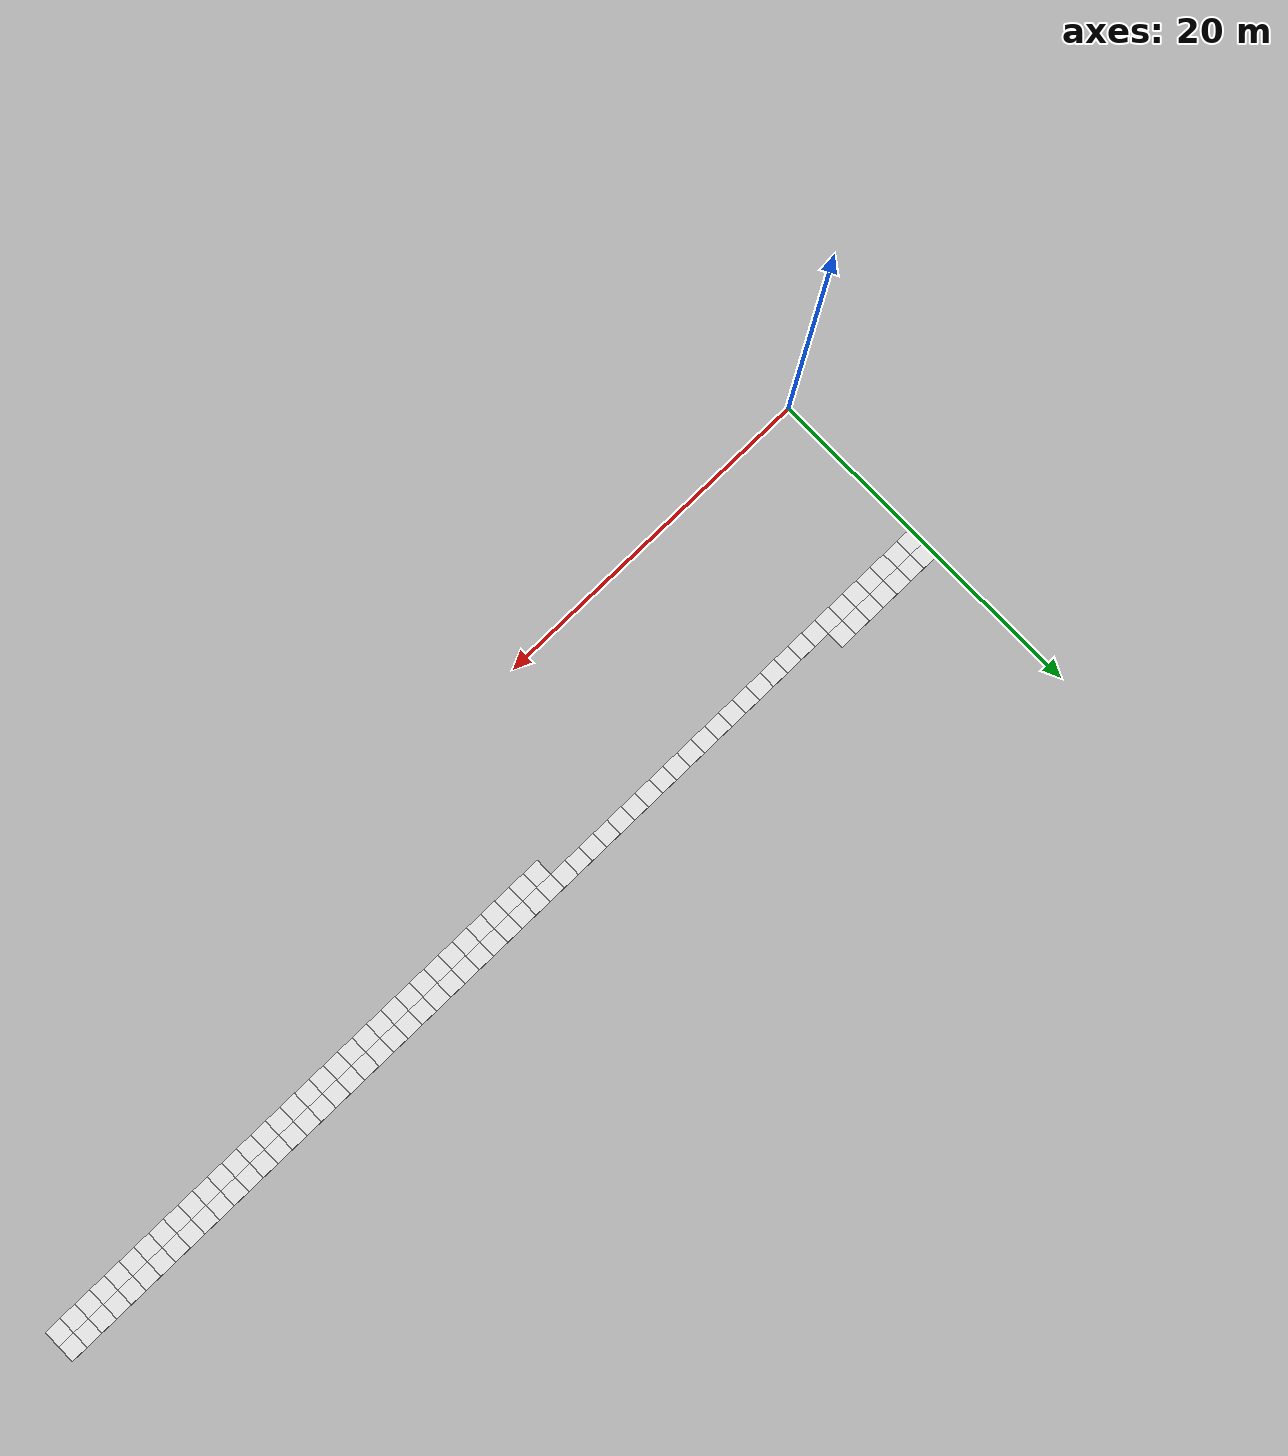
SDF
<sdf version="1.6">
 <world name="grid_world">
  <model name="cell_26_8">
   <static>true</static>
   <link name="link">
    <collision name="collision"><geometry><box><size>1 1 0.1</size></box></geometry></collision>
    <visual name="visual">
     <geometry><box><size>1 1 0.1</size></box></geometry>
     <material>
      <script><uri>file://media/materials/scripts/gazebo.material</uri><name>Gazebo/White</name></script>
     </material>
    </visual>
    <pose>26.5 8.5 0.05 0 0 0</pose>
   </link>
  </model>
  <model name="cell_27_8">
   <static>true</static>
   <link name="link">
    <collision name="collision"><geometry><box><size>1 1 0.1</size></box></geometry></collision>
    <visual name="visual">
     <geometry><box><size>1 1 0.1</size></box></geometry>
     <material>
      <script><uri>file://media/materials/scripts/gazebo.material</uri><name>Gazebo/White</name></script>
     </material>
    </visual>
    <pose>27.5 8.5 0.05 0 0 0</pose>
   </link>
  </model>
  <model name="cell_28_8">
   <static>true</static>
   <link name="link">
    <collision name="collision"><geometry><box><size>1 1 0.1</size></box></geometry></collision>
    <visual name="visual">
     <geometry><box><size>1 1 0.1</size></box></geometry>
     <material>
      <script><uri>file://media/materials/scripts/gazebo.material</uri><name>Gazebo/White</name></script>
     </material>
    </visual>
    <pose>28.5 8.5 0.05 0 0 0</pose>
   </link>
  </model>
  <model name="cell_29_8">
   <static>true</static>
   <link name="link">
    <collision name="collision"><geometry><box><size>1 1 0.1</size></box></geometry></collision>
    <visual name="visual">
     <geometry><box><size>1 1 0.1</size></box></geometry>
     <material>
      <script><uri>file://media/materials/scripts/gazebo.material</uri><name>Gazebo/White</name></script>
     </material>
    </visual>
    <pose>29.5 8.5 0.05 0 0 0</pose>
   </link>
  </model>
  <model name="cell_30_8">
   <static>true</static>
   <link name="link">
    <collision name="collision"><geometry><box><size>1 1 0.1</size></box></geometry></collision>
    <visual name="visual">
     <geometry><box><size>1 1 0.1</size></box></geometry>
     <material>
      <script><uri>file://media/materials/scripts/gazebo.material</uri><name>Gazebo/White</name></script>
     </material>
    </visual>
    <pose>30.5 8.5 0.05 0 0 0</pose>
   </link>
  </model>
  <model name="cell_31_8">
   <static>true</static>
   <link name="link">
    <collision name="collision"><geometry><box><size>1 1 0.1</size></box></geometry></collision>
    <visual name="visual">
     <geometry><box><size>1 1 0.1</size></box></geometry>
     <material>
      <script><uri>file://media/materials/scripts/gazebo.material</uri><name>Gazebo/White</name></script>
     </material>
    </visual>
    <pose>31.5 8.5 0.05 0 0 0</pose>
   </link>
  </model>
  <model name="cell_32_8">
   <static>true</static>
   <link name="link">
    <collision name="collision"><geometry><box><size>1 1 0.1</size></box></geometry></collision>
    <visual name="visual">
     <geometry><box><size>1 1 0.1</size></box></geometry>
     <material>
      <script><uri>file://media/materials/scripts/gazebo.material</uri><name>Gazebo/White</name></script>
     </material>
    </visual>
    <pose>32.5 8.5 0.05 0 0 0</pose>
   </link>
  </model>
  <model name="cell_33_8">
   <static>true</static>
   <link name="link">
    <collision name="collision"><geometry><box><size>1 1 0.1</size></box></geometry></collision>
    <visual name="visual">
     <geometry><box><size>1 1 0.1</size></box></geometry>
     <material>
      <script><uri>file://media/materials/scripts/gazebo.material</uri><name>Gazebo/White</name></script>
     </material>
    </visual>
    <pose>33.5 8.5 0.05 0 0 0</pose>
   </link>
  </model>
  <model name="cell_34_8">
   <static>true</static>
   <link name="link">
    <collision name="collision"><geometry><box><size>1 1 0.1</size></box></geometry></collision>
    <visual name="visual">
     <geometry><box><size>1 1 0.1</size></box></geometry>
     <material>
      <script><uri>file://media/materials/scripts/gazebo.material</uri><name>Gazebo/White</name></script>
     </material>
    </visual>
    <pose>34.5 8.5 0.05 0 0 0</pose>
   </link>
  </model>
  <model name="cell_35_8">
   <static>true</static>
   <link name="link">
    <collision name="collision"><geometry><box><size>1 1 0.1</size></box></geometry></collision>
    <visual name="visual">
     <geometry><box><size>1 1 0.1</size></box></geometry>
     <material>
      <script><uri>file://media/materials/scripts/gazebo.material</uri><name>Gazebo/White</name></script>
     </material>
    </visual>
    <pose>35.5 8.5 0.05 0 0 0</pose>
   </link>
  </model>
  <model name="cell_36_8">
   <static>true</static>
   <link name="link">
    <collision name="collision"><geometry><box><size>1 1 0.1</size></box></geometry></collision>
    <visual name="visual">
     <geometry><box><size>1 1 0.1</size></box></geometry>
     <material>
      <script><uri>file://media/materials/scripts/gazebo.material</uri><name>Gazebo/White</name></script>
     </material>
    </visual>
    <pose>36.5 8.5 0.05 0 0 0</pose>
   </link>
  </model>
  <model name="cell_37_8">
   <static>true</static>
   <link name="link">
    <collision name="collision"><geometry><box><size>1 1 0.1</size></box></geometry></collision>
    <visual name="visual">
     <geometry><box><size>1 1 0.1</size></box></geometry>
     <material>
      <script><uri>file://media/materials/scripts/gazebo.material</uri><name>Gazebo/White</name></script>
     </material>
    </visual>
    <pose>37.5 8.5 0.05 0 0 0</pose>
   </link>
  </model>
  <model name="cell_38_8">
   <static>true</static>
   <link name="link">
    <collision name="collision"><geometry><box><size>1 1 0.1</size></box></geometry></collision>
    <visual name="visual">
     <geometry><box><size>1 1 0.1</size></box></geometry>
     <material>
      <script><uri>file://media/materials/scripts/gazebo.material</uri><name>Gazebo/White</name></script>
     </material>
    </visual>
    <pose>38.5 8.5 0.05 0 0 0</pose>
   </link>
  </model>
  <model name="cell_39_8">
   <static>true</static>
   <link name="link">
    <collision name="collision"><geometry><box><size>1 1 0.1</size></box></geometry></collision>
    <visual name="visual">
     <geometry><box><size>1 1 0.1</size></box></geometry>
     <material>
      <script><uri>file://media/materials/scripts/gazebo.material</uri><name>Gazebo/White</name></script>
     </material>
    </visual>
    <pose>39.5 8.5 0.05 0 0 0</pose>
   </link>
  </model>
  <model name="cell_40_8">
   <static>true</static>
   <link name="link">
    <collision name="collision"><geometry><box><size>1 1 0.1</size></box></geometry></collision>
    <visual name="visual">
     <geometry><box><size>1 1 0.1</size></box></geometry>
     <material>
      <script><uri>file://media/materials/scripts/gazebo.material</uri><name>Gazebo/White</name></script>
     </material>
    </visual>
    <pose>40.5 8.5 0.05 0 0 0</pose>
   </link>
  </model>
  <model name="cell_41_8">
   <static>true</static>
   <link name="link">
    <collision name="collision"><geometry><box><size>1 1 0.1</size></box></geometry></collision>
    <visual name="visual">
     <geometry><box><size>1 1 0.1</size></box></geometry>
     <material>
      <script><uri>file://media/materials/scripts/gazebo.material</uri><name>Gazebo/White</name></script>
     </material>
    </visual>
    <pose>41.5 8.5 0.05 0 0 0</pose>
   </link>
  </model>
  <model name="cell_42_8">
   <static>true</static>
   <link name="link">
    <collision name="collision"><geometry><box><size>1 1 0.1</size></box></geometry></collision>
    <visual name="visual">
     <geometry><box><size>1 1 0.1</size></box></geometry>
     <material>
      <script><uri>file://media/materials/scripts/gazebo.material</uri><name>Gazebo/White</name></script>
     </material>
    </visual>
    <pose>42.5 8.5 0.05 0 0 0</pose>
   </link>
  </model>
  <model name="cell_43_8">
   <static>true</static>
   <link name="link">
    <collision name="collision"><geometry><box><size>1 1 0.1</size></box></geometry></collision>
    <visual name="visual">
     <geometry><box><size>1 1 0.1</size></box></geometry>
     <material>
      <script><uri>file://media/materials/scripts/gazebo.material</uri><name>Gazebo/White</name></script>
     </material>
    </visual>
    <pose>43.5 8.5 0.05 0 0 0</pose>
   </link>
  </model>
  <model name="cell_44_8">
   <static>true</static>
   <link name="link">
    <collision name="collision"><geometry><box><size>1 1 0.1</size></box></geometry></collision>
    <visual name="visual">
     <geometry><box><size>1 1 0.1</size></box></geometry>
     <material>
      <script><uri>file://media/materials/scripts/gazebo.material</uri><name>Gazebo/White</name></script>
     </material>
    </visual>
    <pose>44.5 8.5 0.05 0 0 0</pose>
   </link>
  </model>
  <model name="cell_45_8">
   <static>true</static>
   <link name="link">
    <collision name="collision"><geometry><box><size>1 1 0.1</size></box></geometry></collision>
    <visual name="visual">
     <geometry><box><size>1 1 0.1</size></box></geometry>
     <material>
      <script><uri>file://media/materials/scripts/gazebo.material</uri><name>Gazebo/White</name></script>
     </material>
    </visual>
    <pose>45.5 8.5 0.05 0 0 0</pose>
   </link>
  </model>
  <model name="cell_46_8">
   <static>true</static>
   <link name="link">
    <collision name="collision"><geometry><box><size>1 1 0.1</size></box></geometry></collision>
    <visual name="visual">
     <geometry><box><size>1 1 0.1</size></box></geometry>
     <material>
      <script><uri>file://media/materials/scripts/gazebo.material</uri><name>Gazebo/White</name></script>
     </material>
    </visual>
    <pose>46.5 8.5 0.05 0 0 0</pose>
   </link>
  </model>
  <model name="cell_47_8">
   <static>true</static>
   <link name="link">
    <collision name="collision"><geometry><box><size>1 1 0.1</size></box></geometry></collision>
    <visual name="visual">
     <geometry><box><size>1 1 0.1</size></box></geometry>
     <material>
      <script><uri>file://media/materials/scripts/gazebo.material</uri><name>Gazebo/White</name></script>
     </material>
    </visual>
    <pose>47.5 8.5 0.05 0 0 0</pose>
   </link>
  </model>
  <model name="cell_48_8">
   <static>true</static>
   <link name="link">
    <collision name="collision"><geometry><box><size>1 1 0.1</size></box></geometry></collision>
    <visual name="visual">
     <geometry><box><size>1 1 0.1</size></box></geometry>
     <material>
      <script><uri>file://media/materials/scripts/gazebo.material</uri><name>Gazebo/White</name></script>
     </material>
    </visual>
    <pose>48.5 8.5 0.05 0 0 0</pose>
   </link>
  </model>
  <model name="cell_49_8">
   <static>true</static>
   <link name="link">
    <collision name="collision"><geometry><box><size>1 1 0.1</size></box></geometry></collision>
    <visual name="visual">
     <geometry><box><size>1 1 0.1</size></box></geometry>
     <material>
      <script><uri>file://media/materials/scripts/gazebo.material</uri><name>Gazebo/White</name></script>
     </material>
    </visual>
    <pose>49.5 8.5 0.05 0 0 0</pose>
   </link>
  </model>
  <model name="cell_50_8">
   <static>true</static>
   <link name="link">
    <collision name="collision"><geometry><box><size>1 1 0.1</size></box></geometry></collision>
    <visual name="visual">
     <geometry><box><size>1 1 0.1</size></box></geometry>
     <material>
      <script><uri>file://media/materials/scripts/gazebo.material</uri><name>Gazebo/White</name></script>
     </material>
    </visual>
    <pose>50.5 8.5 0.05 0 0 0</pose>
   </link>
  </model>
  <model name="cell_51_8">
   <static>true</static>
   <link name="link">
    <collision name="collision"><geometry><box><size>1 1 0.1</size></box></geometry></collision>
    <visual name="visual">
     <geometry><box><size>1 1 0.1</size></box></geometry>
     <material>
      <script><uri>file://media/materials/scripts/gazebo.material</uri><name>Gazebo/White</name></script>
     </material>
    </visual>
    <pose>51.5 8.5 0.05 0 0 0</pose>
   </link>
  </model>
  <model name="cell_52_8">
   <static>true</static>
   <link name="link">
    <collision name="collision"><geometry><box><size>1 1 0.1</size></box></geometry></collision>
    <visual name="visual">
     <geometry><box><size>1 1 0.1</size></box></geometry>
     <material>
      <script><uri>file://media/materials/scripts/gazebo.material</uri><name>Gazebo/White</name></script>
     </material>
    </visual>
    <pose>52.5 8.5 0.05 0 0 0</pose>
   </link>
  </model>
  <model name="cell_53_8">
   <static>true</static>
   <link name="link">
    <collision name="collision"><geometry><box><size>1 1 0.1</size></box></geometry></collision>
    <visual name="visual">
     <geometry><box><size>1 1 0.1</size></box></geometry>
     <material>
      <script><uri>file://media/materials/scripts/gazebo.material</uri><name>Gazebo/White</name></script>
     </material>
    </visual>
    <pose>53.5 8.5 0.05 0 0 0</pose>
   </link>
  </model>
  <model name="cell_54_8">
   <static>true</static>
   <link name="link">
    <collision name="collision"><geometry><box><size>1 1 0.1</size></box></geometry></collision>
    <visual name="visual">
     <geometry><box><size>1 1 0.1</size></box></geometry>
     <material>
      <script><uri>file://media/materials/scripts/gazebo.material</uri><name>Gazebo/White</name></script>
     </material>
    </visual>
    <pose>54.5 8.5 0.05 0 0 0</pose>
   </link>
  </model>
  <model name="cell_55_8">
   <static>true</static>
   <link name="link">
    <collision name="collision"><geometry><box><size>1 1 0.1</size></box></geometry></collision>
    <visual name="visual">
     <geometry><box><size>1 1 0.1</size></box></geometry>
     <material>
      <script><uri>file://media/materials/scripts/gazebo.material</uri><name>Gazebo/White</name></script>
     </material>
    </visual>
    <pose>55.5 8.5 0.05 0 0 0</pose>
   </link>
  </model>
  <model name="cell_56_8">
   <static>true</static>
   <link name="link">
    <collision name="collision"><geometry><box><size>1 1 0.1</size></box></geometry></collision>
    <visual name="visual">
     <geometry><box><size>1 1 0.1</size></box></geometry>
     <material>
      <script><uri>file://media/materials/scripts/gazebo.material</uri><name>Gazebo/White</name></script>
     </material>
    </visual>
    <pose>56.5 8.5 0.05 0 0 0</pose>
   </link>
  </model>
  <model name="cell_57_8">
   <static>true</static>
   <link name="link">
    <collision name="collision"><geometry><box><size>1 1 0.1</size></box></geometry></collision>
    <visual name="visual">
     <geometry><box><size>1 1 0.1</size></box></geometry>
     <material>
      <script><uri>file://media/materials/scripts/gazebo.material</uri><name>Gazebo/White</name></script>
     </material>
    </visual>
    <pose>57.5 8.5 0.05 0 0 0</pose>
   </link>
  </model>
  <model name="cell_58_8">
   <static>true</static>
   <link name="link">
    <collision name="collision"><geometry><box><size>1 1 0.1</size></box></geometry></collision>
    <visual name="visual">
     <geometry><box><size>1 1 0.1</size></box></geometry>
     <material>
      <script><uri>file://media/materials/scripts/gazebo.material</uri><name>Gazebo/White</name></script>
     </material>
    </visual>
    <pose>58.5 8.5 0.05 0 0 0</pose>
   </link>
  </model>
  <model name="cell_59_8">
   <static>true</static>
   <link name="link">
    <collision name="collision"><geometry><box><size>1 1 0.1</size></box></geometry></collision>
    <visual name="visual">
     <geometry><box><size>1 1 0.1</size></box></geometry>
     <material>
      <script><uri>file://media/materials/scripts/gazebo.material</uri><name>Gazebo/White</name></script>
     </material>
    </visual>
    <pose>59.5 8.5 0.05 0 0 0</pose>
   </link>
  </model>
  <model name="cell_0_9">
   <static>true</static>
   <link name="link">
    <collision name="collision"><geometry><box><size>1 1 0.1</size></box></geometry></collision>
    <visual name="visual">
     <geometry><box><size>1 1 0.1</size></box></geometry>
     <material>
      <script><uri>file://media/materials/scripts/gazebo.material</uri><name>Gazebo/White</name></script>
     </material>
    </visual>
    <pose>0.5 9.5 0.05 0 0 0</pose>
   </link>
  </model>
  <model name="cell_1_9">
   <static>true</static>
   <link name="link">
    <collision name="collision"><geometry><box><size>1 1 0.1</size></box></geometry></collision>
    <visual name="visual">
     <geometry><box><size>1 1 0.1</size></box></geometry>
     <material>
      <script><uri>file://media/materials/scripts/gazebo.material</uri><name>Gazebo/White</name></script>
     </material>
    </visual>
    <pose>1.5 9.5 0.05 0 0 0</pose>
   </link>
  </model>
  <model name="cell_2_9">
   <static>true</static>
   <link name="link">
    <collision name="collision"><geometry><box><size>1 1 0.1</size></box></geometry></collision>
    <visual name="visual">
     <geometry><box><size>1 1 0.1</size></box></geometry>
     <material>
      <script><uri>file://media/materials/scripts/gazebo.material</uri><name>Gazebo/White</name></script>
     </material>
    </visual>
    <pose>2.5 9.5 0.05 0 0 0</pose>
   </link>
  </model>
  <model name="cell_3_9">
   <static>true</static>
   <link name="link">
    <collision name="collision"><geometry><box><size>1 1 0.1</size></box></geometry></collision>
    <visual name="visual">
     <geometry><box><size>1 1 0.1</size></box></geometry>
     <material>
      <script><uri>file://media/materials/scripts/gazebo.material</uri><name>Gazebo/White</name></script>
     </material>
    </visual>
    <pose>3.5 9.5 0.05 0 0 0</pose>
   </link>
  </model>
  <model name="cell_4_9">
   <static>true</static>
   <link name="link">
    <collision name="collision"><geometry><box><size>1 1 0.1</size></box></geometry></collision>
    <visual name="visual">
     <geometry><box><size>1 1 0.1</size></box></geometry>
     <material>
      <script><uri>file://media/materials/scripts/gazebo.material</uri><name>Gazebo/White</name></script>
     </material>
    </visual>
    <pose>4.5 9.5 0.05 0 0 0</pose>
   </link>
  </model>
  <model name="cell_5_9">
   <static>true</static>
   <link name="link">
    <collision name="collision"><geometry><box><size>1 1 0.1</size></box></geometry></collision>
    <visual name="visual">
     <geometry><box><size>1 1 0.1</size></box></geometry>
     <material>
      <script><uri>file://media/materials/scripts/gazebo.material</uri><name>Gazebo/White</name></script>
     </material>
    </visual>
    <pose>5.5 9.5 0.05 0 0 0</pose>
   </link>
  </model>
  <model name="cell_6_9">
   <static>true</static>
   <link name="link">
    <collision name="collision"><geometry><box><size>1 1 0.1</size></box></geometry></collision>
    <visual name="visual">
     <geometry><box><size>1 1 0.1</size></box></geometry>
     <material>
      <script><uri>file://media/materials/scripts/gazebo.material</uri><name>Gazebo/White</name></script>
     </material>
    </visual>
    <pose>6.5 9.5 0.05 0 0 0</pose>
   </link>
  </model>
  <model name="cell_7_9">
   <static>true</static>
   <link name="link">
    <collision name="collision"><geometry><box><size>1 1 0.1</size></box></geometry></collision>
    <visual name="visual">
     <geometry><box><size>1 1 0.1</size></box></geometry>
     <material>
      <script><uri>file://media/materials/scripts/gazebo.material</uri><name>Gazebo/White</name></script>
     </material>
    </visual>
    <pose>7.5 9.5 0.05 0 0 0</pose>
   </link>
  </model>
  <model name="cell_8_9">
   <static>true</static>
   <link name="link">
    <collision name="collision"><geometry><box><size>1 1 0.1</size></box></geometry></collision>
    <visual name="visual">
     <geometry><box><size>1 1 0.1</size></box></geometry>
     <material>
      <script><uri>file://media/materials/scripts/gazebo.material</uri><name>Gazebo/White</name></script>
     </material>
    </visual>
    <pose>8.5 9.5 0.05 0 0 0</pose>
   </link>
  </model>
  <model name="cell_9_9">
   <static>true</static>
   <link name="link">
    <collision name="collision"><geometry><box><size>1 1 0.1</size></box></geometry></collision>
    <visual name="visual">
     <geometry><box><size>1 1 0.1</size></box></geometry>
     <material>
      <script><uri>file://media/materials/scripts/gazebo.material</uri><name>Gazebo/White</name></script>
     </material>
    </visual>
    <pose>9.5 9.5 0.05 0 0 0</pose>
   </link>
  </model>
  <model name="cell_10_9">
   <static>true</static>
   <link name="link">
    <collision name="collision"><geometry><box><size>1 1 0.1</size></box></geometry></collision>
    <visual name="visual">
     <geometry><box><size>1 1 0.1</size></box></geometry>
     <material>
      <script><uri>file://media/materials/scripts/gazebo.material</uri><name>Gazebo/White</name></script>
     </material>
    </visual>
    <pose>10.5 9.5 0.05 0 0 0</pose>
   </link>
  </model>
  <model name="cell_11_9">
   <static>true</static>
   <link name="link">
    <collision name="collision"><geometry><box><size>1 1 0.1</size></box></geometry></collision>
    <visual name="visual">
     <geometry><box><size>1 1 0.1</size></box></geometry>
     <material>
      <script><uri>file://media/materials/scripts/gazebo.material</uri><name>Gazebo/White</name></script>
     </material>
    </visual>
    <pose>11.5 9.5 0.05 0 0 0</pose>
   </link>
  </model>
  <model name="cell_12_9">
   <static>true</static>
   <link name="link">
    <collision name="collision"><geometry><box><size>1 1 0.1</size></box></geometry></collision>
    <visual name="visual">
     <geometry><box><size>1 1 0.1</size></box></geometry>
     <material>
      <script><uri>file://media/materials/scripts/gazebo.material</uri><name>Gazebo/White</name></script>
     </material>
    </visual>
    <pose>12.5 9.5 0.05 0 0 0</pose>
   </link>
  </model>
  <model name="cell_13_9">
   <static>true</static>
   <link name="link">
    <collision name="collision"><geometry><box><size>1 1 0.1</size></box></geometry></collision>
    <visual name="visual">
     <geometry><box><size>1 1 0.1</size></box></geometry>
     <material>
      <script><uri>file://media/materials/scripts/gazebo.material</uri><name>Gazebo/White</name></script>
     </material>
    </visual>
    <pose>13.5 9.5 0.05 0 0 0</pose>
   </link>
  </model>
  <model name="cell_14_9">
   <static>true</static>
   <link name="link">
    <collision name="collision"><geometry><box><size>1 1 0.1</size></box></geometry></collision>
    <visual name="visual">
     <geometry><box><size>1 1 0.1</size></box></geometry>
     <material>
      <script><uri>file://media/materials/scripts/gazebo.material</uri><name>Gazebo/White</name></script>
     </material>
    </visual>
    <pose>14.5 9.5 0.05 0 0 0</pose>
   </link>
  </model>
  <model name="cell_15_9">
   <static>true</static>
   <link name="link">
    <collision name="collision"><geometry><box><size>1 1 0.1</size></box></geometry></collision>
    <visual name="visual">
     <geometry><box><size>1 1 0.1</size></box></geometry>
     <material>
      <script><uri>file://media/materials/scripts/gazebo.material</uri><name>Gazebo/White</name></script>
     </material>
    </visual>
    <pose>15.5 9.5 0.05 0 0 0</pose>
   </link>
  </model>
  <model name="cell_16_9">
   <static>true</static>
   <link name="link">
    <collision name="collision"><geometry><box><size>1 1 0.1</size></box></geometry></collision>
    <visual name="visual">
     <geometry><box><size>1 1 0.1</size></box></geometry>
     <material>
      <script><uri>file://media/materials/scripts/gazebo.material</uri><name>Gazebo/White</name></script>
     </material>
    </visual>
    <pose>16.5 9.5 0.05 0 0 0</pose>
   </link>
  </model>
  <model name="cell_17_9">
   <static>true</static>
   <link name="link">
    <collision name="collision"><geometry><box><size>1 1 0.1</size></box></geometry></collision>
    <visual name="visual">
     <geometry><box><size>1 1 0.1</size></box></geometry>
     <material>
      <script><uri>file://media/materials/scripts/gazebo.material</uri><name>Gazebo/White</name></script>
     </material>
    </visual>
    <pose>17.5 9.5 0.05 0 0 0</pose>
   </link>
  </model>
  <model name="cell_18_9">
   <static>true</static>
   <link name="link">
    <collision name="collision"><geometry><box><size>1 1 0.1</size></box></geometry></collision>
    <visual name="visual">
     <geometry><box><size>1 1 0.1</size></box></geometry>
     <material>
      <script><uri>file://media/materials/scripts/gazebo.material</uri><name>Gazebo/White</name></script>
     </material>
    </visual>
    <pose>18.5 9.5 0.05 0 0 0</pose>
   </link>
  </model>
  <model name="cell_19_9">
   <static>true</static>
   <link name="link">
    <collision name="collision"><geometry><box><size>1 1 0.1</size></box></geometry></collision>
    <visual name="visual">
     <geometry><box><size>1 1 0.1</size></box></geometry>
     <material>
      <script><uri>file://media/materials/scripts/gazebo.material</uri><name>Gazebo/White</name></script>
     </material>
    </visual>
    <pose>19.5 9.5 0.05 0 0 0</pose>
   </link>
  </model>
  <model name="cell_20_9">
   <static>true</static>
   <link name="link">
    <collision name="collision"><geometry><box><size>1 1 0.1</size></box></geometry></collision>
    <visual name="visual">
     <geometry><box><size>1 1 0.1</size></box></geometry>
     <material>
      <script><uri>file://media/materials/scripts/gazebo.material</uri><name>Gazebo/White</name></script>
     </material>
    </visual>
    <pose>20.5 9.5 0.05 0 0 0</pose>
   </link>
  </model>
  <model name="cell_21_9">
   <static>true</static>
   <link name="link">
    <collision name="collision"><geometry><box><size>1 1 0.1</size></box></geometry></collision>
    <visual name="visual">
     <geometry><box><size>1 1 0.1</size></box></geometry>
     <material>
      <script><uri>file://media/materials/scripts/gazebo.material</uri><name>Gazebo/White</name></script>
     </material>
    </visual>
    <pose>21.5 9.5 0.05 0 0 0</pose>
   </link>
  </model>
  <model name="cell_22_9">
   <static>true</static>
   <link name="link">
    <collision name="collision"><geometry><box><size>1 1 0.1</size></box></geometry></collision>
    <visual name="visual">
     <geometry><box><size>1 1 0.1</size></box></geometry>
     <material>
      <script><uri>file://media/materials/scripts/gazebo.material</uri><name>Gazebo/White</name></script>
     </material>
    </visual>
    <pose>22.5 9.5 0.05 0 0 0</pose>
   </link>
  </model>
  <model name="cell_23_9">
   <static>true</static>
   <link name="link">
    <collision name="collision"><geometry><box><size>1 1 0.1</size></box></geometry></collision>
    <visual name="visual">
     <geometry><box><size>1 1 0.1</size></box></geometry>
     <material>
      <script><uri>file://media/materials/scripts/gazebo.material</uri><name>Gazebo/White</name></script>
     </material>
    </visual>
    <pose>23.5 9.5 0.05 0 0 0</pose>
   </link>
  </model>
  <model name="cell_24_9">
   <static>true</static>
   <link name="link">
    <collision name="collision"><geometry><box><size>1 1 0.1</size></box></geometry></collision>
    <visual name="visual">
     <geometry><box><size>1 1 0.1</size></box></geometry>
     <material>
      <script><uri>file://media/materials/scripts/gazebo.material</uri><name>Gazebo/White</name></script>
     </material>
    </visual>
    <pose>24.5 9.5 0.05 0 0 0</pose>
   </link>
  </model>
  <model name="cell_25_9">
   <static>true</static>
   <link name="link">
    <collision name="collision"><geometry><box><size>1 1 0.1</size></box></geometry></collision>
    <visual name="visual">
     <geometry><box><size>1 1 0.1</size></box></geometry>
     <material>
      <script><uri>file://media/materials/scripts/gazebo.material</uri><name>Gazebo/White</name></script>
     </material>
    </visual>
    <pose>25.5 9.5 0.05 0 0 0</pose>
   </link>
  </model>
  <model name="cell_26_9">
   <static>true</static>
   <link name="link">
    <collision name="collision"><geometry><box><size>1 1 0.1</size></box></geometry></collision>
    <visual name="visual">
     <geometry><box><size>1 1 0.1</size></box></geometry>
     <material>
      <script><uri>file://media/materials/scripts/gazebo.material</uri><name>Gazebo/White</name></script>
     </material>
    </visual>
    <pose>26.5 9.5 0.05 0 0 0</pose>
   </link>
  </model>
  <model name="cell_27_9">
   <static>true</static>
   <link name="link">
    <collision name="collision"><geometry><box><size>1 1 0.1</size></box></geometry></collision>
    <visual name="visual">
     <geometry><box><size>1 1 0.1</size></box></geometry>
     <material>
      <script><uri>file://media/materials/scripts/gazebo.material</uri><name>Gazebo/White</name></script>
     </material>
    </visual>
    <pose>27.5 9.5 0.05 0 0 0</pose>
   </link>
  </model>
  <model name="cell_28_9">
   <static>true</static>
   <link name="link">
    <collision name="collision"><geometry><box><size>1 1 0.1</size></box></geometry></collision>
    <visual name="visual">
     <geometry><box><size>1 1 0.1</size></box></geometry>
     <material>
      <script><uri>file://media/materials/scripts/gazebo.material</uri><name>Gazebo/White</name></script>
     </material>
    </visual>
    <pose>28.5 9.5 0.05 0 0 0</pose>
   </link>
  </model>
  <model name="cell_29_9">
   <static>true</static>
   <link name="link">
    <collision name="collision"><geometry><box><size>1 1 0.1</size></box></geometry></collision>
    <visual name="visual">
     <geometry><box><size>1 1 0.1</size></box></geometry>
     <material>
      <script><uri>file://media/materials/scripts/gazebo.material</uri><name>Gazebo/White</name></script>
     </material>
    </visual>
    <pose>29.5 9.5 0.05 0 0 0</pose>
   </link>
  </model>
  <model name="cell_30_9">
   <static>true</static>
   <link name="link">
    <collision name="collision"><geometry><box><size>1 1 0.1</size></box></geometry></collision>
    <visual name="visual">
     <geometry><box><size>1 1 0.1</size></box></geometry>
     <material>
      <script><uri>file://media/materials/scripts/gazebo.material</uri><name>Gazebo/White</name></script>
     </material>
    </visual>
    <pose>30.5 9.5 0.05 0 0 0</pose>
   </link>
  </model>
  <model name="cell_31_9">
   <static>true</static>
   <link name="link">
    <collision name="collision"><geometry><box><size>1 1 0.1</size></box></geometry></collision>
    <visual name="visual">
     <geometry><box><size>1 1 0.1</size></box></geometry>
     <material>
      <script><uri>file://media/materials/scripts/gazebo.material</uri><name>Gazebo/White</name></script>
     </material>
    </visual>
    <pose>31.5 9.5 0.05 0 0 0</pose>
   </link>
  </model>
  <model name="cell_32_9">
   <static>true</static>
   <link name="link">
    <collision name="collision"><geometry><box><size>1 1 0.1</size></box></geometry></collision>
    <visual name="visual">
     <geometry><box><size>1 1 0.1</size></box></geometry>
     <material>
      <script><uri>file://media/materials/scripts/gazebo.material</uri><name>Gazebo/White</name></script>
     </material>
    </visual>
    <pose>32.5 9.5 0.05 0 0 0</pose>
   </link>
  </model>
  <model name="cell_33_9">
   <static>true</static>
   <link name="link">
    <collision name="collision"><geometry><box><size>1 1 0.1</size></box></geometry></collision>
    <visual name="visual">
     <geometry><box><size>1 1 0.1</size></box></geometry>
     <material>
      <script><uri>file://media/materials/scripts/gazebo.material</uri><name>Gazebo/White</name></script>
     </material>
    </visual>
    <pose>33.5 9.5 0.05 0 0 0</pose>
   </link>
  </model>
  <model name="cell_34_9">
   <static>true</static>
   <link name="link">
    <collision name="collision"><geometry><box><size>1 1 0.1</size></box></geometry></collision>
    <visual name="visual">
     <geometry><box><size>1 1 0.1</size></box></geometry>
     <material>
      <script><uri>file://media/materials/scripts/gazebo.material</uri><name>Gazebo/White</name></script>
     </material>
    </visual>
    <pose>34.5 9.5 0.05 0 0 0</pose>
   </link>
  </model>
  <model name="cell_35_9">
   <static>true</static>
   <link name="link">
    <collision name="collision"><geometry><box><size>1 1 0.1</size></box></geometry></collision>
    <visual name="visual">
     <geometry><box><size>1 1 0.1</size></box></geometry>
     <material>
      <script><uri>file://media/materials/scripts/gazebo.material</uri><name>Gazebo/White</name></script>
     </material>
    </visual>
    <pose>35.5 9.5 0.05 0 0 0</pose>
   </link>
  </model>
  <model name="cell_36_9">
   <static>true</static>
   <link name="link">
    <collision name="collision"><geometry><box><size>1 1 0.1</size></box></geometry></collision>
    <visual name="visual">
     <geometry><box><size>1 1 0.1</size></box></geometry>
     <material>
      <script><uri>file://media/materials/scripts/gazebo.material</uri><name>Gazebo/White</name></script>
     </material>
    </visual>
    <pose>36.5 9.5 0.05 0 0 0</pose>
   </link>
  </model>
  <model name="cell_37_9">
   <static>true</static>
   <link name="link">
    <collision name="collision"><geometry><box><size>1 1 0.1</size></box></geometry></collision>
    <visual name="visual">
     <geometry><box><size>1 1 0.1</size></box></geometry>
     <material>
      <script><uri>file://media/materials/scripts/gazebo.material</uri><name>Gazebo/White</name></script>
     </material>
    </visual>
    <pose>37.5 9.5 0.05 0 0 0</pose>
   </link>
  </model>
  <model name="cell_38_9">
   <static>true</static>
   <link name="link">
    <collision name="collision"><geometry><box><size>1 1 0.1</size></box></geometry></collision>
    <visual name="visual">
     <geometry><box><size>1 1 0.1</size></box></geometry>
     <material>
      <script><uri>file://media/materials/scripts/gazebo.material</uri><name>Gazebo/White</name></script>
     </material>
    </visual>
    <pose>38.5 9.5 0.05 0 0 0</pose>
   </link>
  </model>
  <model name="cell_39_9">
   <static>true</static>
   <link name="link">
    <collision name="collision"><geometry><box><size>1 1 0.1</size></box></geometry></collision>
    <visual name="visual">
     <geometry><box><size>1 1 0.1</size></box></geometry>
     <material>
      <script><uri>file://media/materials/scripts/gazebo.material</uri><name>Gazebo/White</name></script>
     </material>
    </visual>
    <pose>39.5 9.5 0.05 0 0 0</pose>
   </link>
  </model>
  <model name="cell_40_9">
   <static>true</static>
   <link name="link">
    <collision name="collision"><geometry><box><size>1 1 0.1</size></box></geometry></collision>
    <visual name="visual">
     <geometry><box><size>1 1 0.1</size></box></geometry>
     <material>
      <script><uri>file://media/materials/scripts/gazebo.material</uri><name>Gazebo/White</name></script>
     </material>
    </visual>
    <pose>40.5 9.5 0.05 0 0 0</pose>
   </link>
  </model>
  <model name="cell_41_9">
   <static>true</static>
   <link name="link">
    <collision name="collision"><geometry><box><size>1 1 0.1</size></box></geometry></collision>
    <visual name="visual">
     <geometry><box><size>1 1 0.1</size></box></geometry>
     <material>
      <script><uri>file://media/materials/scripts/gazebo.material</uri><name>Gazebo/White</name></script>
     </material>
    </visual>
    <pose>41.5 9.5 0.05 0 0 0</pose>
   </link>
  </model>
  <model name="cell_42_9">
   <static>true</static>
   <link name="link">
    <collision name="collision"><geometry><box><size>1 1 0.1</size></box></geometry></collision>
    <visual name="visual">
     <geometry><box><size>1 1 0.1</size></box></geometry>
     <material>
      <script><uri>file://media/materials/scripts/gazebo.material</uri><name>Gazebo/White</name></script>
     </material>
    </visual>
    <pose>42.5 9.5 0.05 0 0 0</pose>
   </link>
  </model>
  <model name="cell_43_9">
   <static>true</static>
   <link name="link">
    <collision name="collision"><geometry><box><size>1 1 0.1</size></box></geometry></collision>
    <visual name="visual">
     <geometry><box><size>1 1 0.1</size></box></geometry>
     <material>
      <script><uri>file://media/materials/scripts/gazebo.material</uri><name>Gazebo/White</name></script>
     </material>
    </visual>
    <pose>43.5 9.5 0.05 0 0 0</pose>
   </link>
  </model>
  <model name="cell_44_9">
   <static>true</static>
   <link name="link">
    <collision name="collision"><geometry><box><size>1 1 0.1</size></box></geometry></collision>
    <visual name="visual">
     <geometry><box><size>1 1 0.1</size></box></geometry>
     <material>
      <script><uri>file://media/materials/scripts/gazebo.material</uri><name>Gazebo/White</name></script>
     </material>
    </visual>
    <pose>44.5 9.5 0.05 0 0 0</pose>
   </link>
  </model>
  <model name="cell_45_9">
   <static>true</static>
   <link name="link">
    <collision name="collision"><geometry><box><size>1 1 0.1</size></box></geometry></collision>
    <visual name="visual">
     <geometry><box><size>1 1 0.1</size></box></geometry>
     <material>
      <script><uri>file://media/materials/scripts/gazebo.material</uri><name>Gazebo/White</name></script>
     </material>
    </visual>
    <pose>45.5 9.5 0.05 0 0 0</pose>
   </link>
  </model>
  <model name="cell_46_9">
   <static>true</static>
   <link name="link">
    <collision name="collision"><geometry><box><size>1 1 0.1</size></box></geometry></collision>
    <visual name="visual">
     <geometry><box><size>1 1 0.1</size></box></geometry>
     <material>
      <script><uri>file://media/materials/scripts/gazebo.material</uri><name>Gazebo/White</name></script>
     </material>
    </visual>
    <pose>46.5 9.5 0.05 0 0 0</pose>
   </link>
  </model>
  <model name="cell_47_9">
   <static>true</static>
   <link name="link">
    <collision name="collision"><geometry><box><size>1 1 0.1</size></box></geometry></collision>
    <visual name="visual">
     <geometry><box><size>1 1 0.1</size></box></geometry>
     <material>
      <script><uri>file://media/materials/scripts/gazebo.material</uri><name>Gazebo/White</name></script>
     </material>
    </visual>
    <pose>47.5 9.5 0.05 0 0 0</pose>
   </link>
  </model>
  <model name="cell_48_9">
   <static>true</static>
   <link name="link">
    <collision name="collision"><geometry><box><size>1 1 0.1</size></box></geometry></collision>
    <visual name="visual">
     <geometry><box><size>1 1 0.1</size></box></geometry>
     <material>
      <script><uri>file://media/materials/scripts/gazebo.material</uri><name>Gazebo/White</name></script>
     </material>
    </visual>
    <pose>48.5 9.5 0.05 0 0 0</pose>
   </link>
  </model>
  <model name="cell_49_9">
   <static>true</static>
   <link name="link">
    <collision name="collision"><geometry><box><size>1 1 0.1</size></box></geometry></collision>
    <visual name="visual">
     <geometry><box><size>1 1 0.1</size></box></geometry>
     <material>
      <script><uri>file://media/materials/scripts/gazebo.material</uri><name>Gazebo/White</name></script>
     </material>
    </visual>
    <pose>49.5 9.5 0.05 0 0 0</pose>
   </link>
  </model>
  <model name="cell_50_9">
   <static>true</static>
   <link name="link">
    <collision name="collision"><geometry><box><size>1 1 0.1</size></box></geometry></collision>
    <visual name="visual">
     <geometry><box><size>1 1 0.1</size></box></geometry>
     <material>
      <script><uri>file://media/materials/scripts/gazebo.material</uri><name>Gazebo/White</name></script>
     </material>
    </visual>
    <pose>50.5 9.5 0.05 0 0 0</pose>
   </link>
  </model>
  <model name="cell_51_9">
   <static>true</static>
   <link name="link">
    <collision name="collision"><geometry><box><size>1 1 0.1</size></box></geometry></collision>
    <visual name="visual">
     <geometry><box><size>1 1 0.1</size></box></geometry>
     <material>
      <script><uri>file://media/materials/scripts/gazebo.material</uri><name>Gazebo/White</name></script>
     </material>
    </visual>
    <pose>51.5 9.5 0.05 0 0 0</pose>
   </link>
  </model>
  <model name="cell_52_9">
   <static>true</static>
   <link name="link">
    <collision name="collision"><geometry><box><size>1 1 0.1</size></box></geometry></collision>
    <visual name="visual">
     <geometry><box><size>1 1 0.1</size></box></geometry>
     <material>
      <script><uri>file://media/materials/scripts/gazebo.material</uri><name>Gazebo/White</name></script>
     </material>
    </visual>
    <pose>52.5 9.5 0.05 0 0 0</pose>
   </link>
  </model>
  <model name="cell_53_9">
   <static>true</static>
   <link name="link">
    <collision name="collision"><geometry><box><size>1 1 0.1</size></box></geometry></collision>
    <visual name="visual">
     <geometry><box><size>1 1 0.1</size></box></geometry>
     <material>
      <script><uri>file://media/materials/scripts/gazebo.material</uri><name>Gazebo/White</name></script>
     </material>
    </visual>
    <pose>53.5 9.5 0.05 0 0 0</pose>
   </link>
  </model>
  <model name="cell_54_9">
   <static>true</static>
   <link name="link">
    <collision name="collision"><geometry><box><size>1 1 0.1</size></box></geometry></collision>
    <visual name="visual">
     <geometry><box><size>1 1 0.1</size></box></geometry>
     <material>
      <script><uri>file://media/materials/scripts/gazebo.material</uri><name>Gazebo/White</name></script>
     </material>
    </visual>
    <pose>54.5 9.5 0.05 0 0 0</pose>
   </link>
  </model>
  <model name="cell_55_9">
   <static>true</static>
   <link name="link">
    <collision name="collision"><geometry><box><size>1 1 0.1</size></box></geometry></collision>
    <visual name="visual">
     <geometry><box><size>1 1 0.1</size></box></geometry>
     <material>
      <script><uri>file://media/materials/scripts/gazebo.material</uri><name>Gazebo/White</name></script>
     </material>
    </visual>
    <pose>55.5 9.5 0.05 0 0 0</pose>
   </link>
  </model>
  <model name="cell_56_9">
   <static>true</static>
   <link name="link">
    <collision name="collision"><geometry><box><size>1 1 0.1</size></box></geometry></collision>
    <visual name="visual">
     <geometry><box><size>1 1 0.1</size></box></geometry>
     <material>
      <script><uri>file://media/materials/scripts/gazebo.material</uri><name>Gazebo/White</name></script>
     </material>
    </visual>
    <pose>56.5 9.5 0.05 0 0 0</pose>
   </link>
  </model>
  <model name="cell_57_9">
   <static>true</static>
   <link name="link">
    <collision name="collision"><geometry><box><size>1 1 0.1</size></box></geometry></collision>
    <visual name="visual">
     <geometry><box><size>1 1 0.1</size></box></geometry>
     <material>
      <script><uri>file://media/materials/scripts/gazebo.material</uri><name>Gazebo/White</name></script>
     </material>
    </visual>
    <pose>57.5 9.5 0.05 0 0 0</pose>
   </link>
  </model>
  <model name="cell_58_9">
   <static>true</static>
   <link name="link">
    <collision name="collision"><geometry><box><size>1 1 0.1</size></box></geometry></collision>
    <visual name="visual">
     <geometry><box><size>1 1 0.1</size></box></geometry>
     <material>
      <script><uri>file://media/materials/scripts/gazebo.material</uri><name>Gazebo/White</name></script>
     </material>
    </visual>
    <pose>58.5 9.5 0.05 0 0 0</pose>
   </link>
  </model>
  <model name="cell_59_9">
   <static>true</static>
   <link name="link">
    <collision name="collision"><geometry><box><size>1 1 0.1</size></box></geometry></collision>
    <visual name="visual">
     <geometry><box><size>1 1 0.1</size></box></geometry>
     <material>
      <script><uri>file://media/materials/scripts/gazebo.material</uri><name>Gazebo/White</name></script>
     </material>
    </visual>
    <pose>59.5 9.5 0.05 0 0 0</pose>
   </link>
  </model>
  <model name="cell_0_10">
   <static>true</static>
   <link name="link">
    <collision name="collision"><geometry><box><size>1 1 0.1</size></box></geometry></collision>
    <visual name="visual">
     <geometry><box><size>1 1 0.1</size></box></geometry>
     <material>
      <script><uri>file://media/materials/scripts/gazebo.material</uri><name>Gazebo/White</name></script>
     </material>
    </visual>
    <pose>0.5 10.5 0.05 0 0 0</pose>
   </link>
  </model>
  <model name="cell_1_10">
   <static>true</static>
   <link name="link">
    <collision name="collision"><geometry><box><size>1 1 0.1</size></box></geometry></collision>
    <visual name="visual">
     <geometry><box><size>1 1 0.1</size></box></geometry>
     <material>
      <script><uri>file://media/materials/scripts/gazebo.material</uri><name>Gazebo/White</name></script>
     </material>
    </visual>
    <pose>1.5 10.5 0.05 0 0 0</pose>
   </link>
  </model>
  <model name="cell_2_10">
   <static>true</static>
   <link name="link">
    <collision name="collision"><geometry><box><size>1 1 0.1</size></box></geometry></collision>
    <visual name="visual">
     <geometry><box><size>1 1 0.1</size></box></geometry>
     <material>
      <script><uri>file://media/materials/scripts/gazebo.material</uri><name>Gazebo/White</name></script>
     </material>
    </visual>
    <pose>2.5 10.5 0.05 0 0 0</pose>
   </link>
  </model>
  <model name="cell_3_10">
   <static>true</static>
   <link name="link">
    <collision name="collision"><geometry><box><size>1 1 0.1</size></box></geometry></collision>
    <visual name="visual">
     <geometry><box><size>1 1 0.1</size></box></geometry>
     <material>
      <script><uri>file://media/materials/scripts/gazebo.material</uri><name>Gazebo/White</name></script>
     </material>
    </visual>
    <pose>3.5 10.5 0.05 0 0 0</pose>
   </link>
  </model>
  <model name="cell_4_10">
   <static>true</static>
   <link name="link">
    <collision name="collision"><geometry><box><size>1 1 0.1</size></box></geometry></collision>
    <visual name="visual">
     <geometry><box><size>1 1 0.1</size></box></geometry>
     <material>
      <script><uri>file://media/materials/scripts/gazebo.material</uri><name>Gazebo/White</name></script>
     </material>
    </visual>
    <pose>4.5 10.5 0.05 0 0 0</pose>
   </link>
  </model>
  <model name="cell_5_10">
   <static>true</static>
   <link name="link">
    <collision name="collision"><geometry><box><size>1 1 0.1</size></box></geometry></collision>
    <visual name="visual">
     <geometry><box><size>1 1 0.1</size></box></geometry>
     <material>
      <script><uri>file://media/materials/scripts/gazebo.material</uri><name>Gazebo/White</name></script>
     </material>
    </visual>
    <pose>5.5 10.5 0.05 0 0 0</pose>
   </link>
  </model>
  <model name="cell_6_10">
   <static>true</static>
   <link name="link">
    <collision name="collision"><geometry><box><size>1 1 0.1</size></box></geometry></collision>
    <visual name="visual">
     <geometry><box><size>1 1 0.1</size></box></geometry>
     <material>
      <script><uri>file://media/materials/scripts/gazebo.material</uri><name>Gazebo/White</name></script>
     </material>
    </visual>
    <pose>6.5 10.5 0.05 0 0 0</pose>
   </link>
  </model>
 </world>
</sdf>
